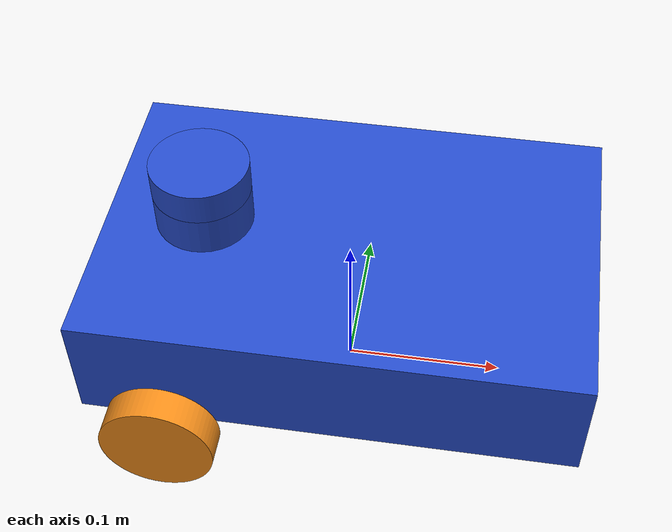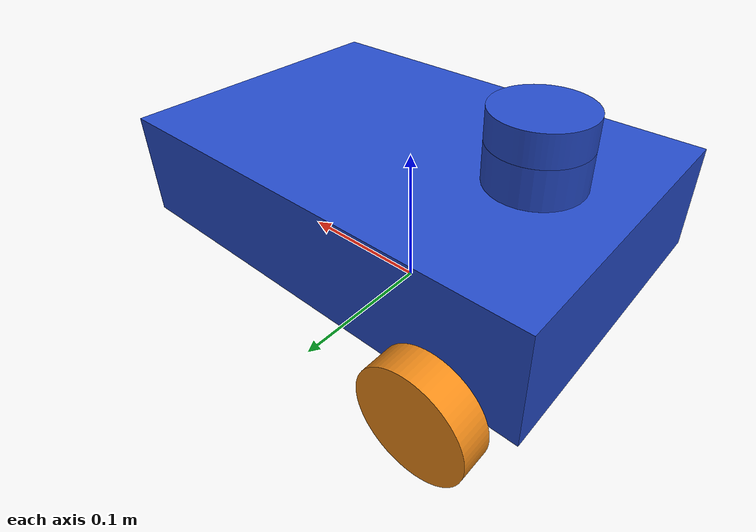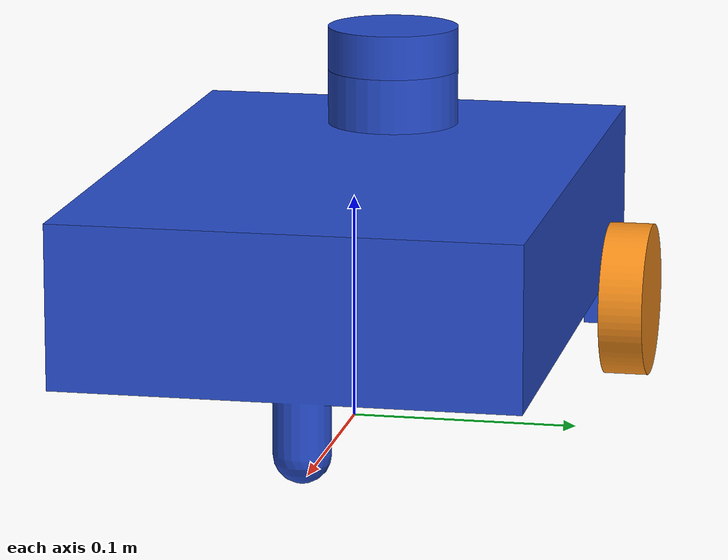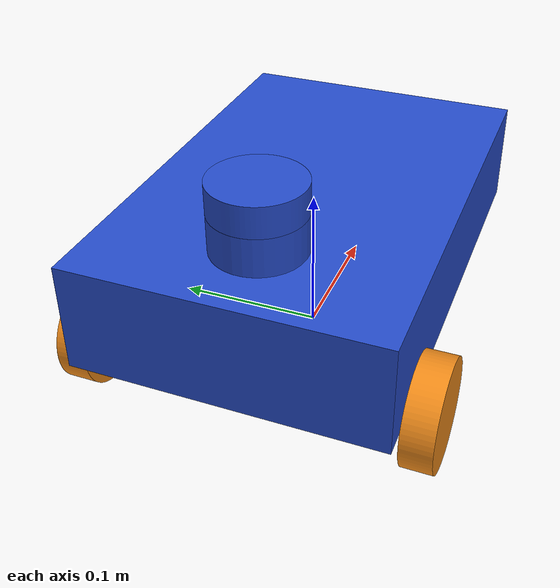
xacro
<?xml version="1.0" ?>
<robot name="diff_robot" xmlns:xacro="http://www.ros.org/wiki/xacro">

<!-- materials file -->
<xacro:include filename="$(find robot_description_description)/urdf/materials.xacro" />
<!-- gazebo materials file -->
<xacro:include filename="$(find robot_description_description)/gazebo/robot_description_gazebo_material.gazebo" />
<!-- transfer -->
<!-- plugin -->
<xacro:include filename="$(find robot_description_description)/gazebo/robot_description_gazebo_plugin.gazebo" />
<xacro:include filename="$(find robot_description_description)/gazebo/robot_description.gazebo" />

<!-- link -->
<link name="base_link">
  <inertial>
    <origin xyz="-0.0011345589802084692 1.669329030983392e-17 0.08093852385142532" rpy="0 0 0"/>
    <mass value="4.620128763046212"/>
    <inertia ixx="0.017305" iyy="0.036986" izz="0.049972" ixy="0.0" iyz="0.0" ixz="0.000414"/>
  </inertial>
  <visual>
    <origin xyz="0 0 0" rpy="0 0 0"/>
    <geometry>
      <mesh filename="package://robot_description_description/meshes/base_link.stl" scale="0.001 0.001 0.001"/>
    </geometry>
    <material name="blue"/>
  </visual>
  <collision>
    <origin xyz="0 0 0" rpy="0 0 0"/>
    <geometry>
      <mesh filename="package://robot_description_description/meshes/base_link.stl" scale="0.001 0.001 0.001"/>
    </geometry>
  </collision>
</link>

<link name="lidar_1">
  <inertial>
    <origin xyz="0.0 -5.026061718855928e-18 0.010000000000000009" rpy="0 0 0"/>
    <mass value="0.08058185156457819"/>
    <inertia ixx="2.1e-05" iyy="2.1e-05" izz="3.6e-05" ixy="-0.0" iyz="0.0" ixz="0.0"/>
  </inertial>
  <visual>
    <origin xyz="0.09 -0.0 -0.141" rpy="0 0 0"/>
    <geometry>
      <mesh filename="package://robot_description_description/meshes/lidar_1.stl" scale="0.001 0.001 0.001"/>
    </geometry>
    <material name="blue"/>
  </visual>
  <collision>
    <origin xyz="0.09 -0.0 -0.141" rpy="0 0 0"/>
    <geometry>
      <mesh filename="package://robot_description_description/meshes/lidar_1.stl" scale="0.001 0.001 0.001"/>
    </geometry>
  </collision>
</link>

<link name="left_wheel_1">
  <inertial>
    <origin xyz="1.8041124150158794e-16 0.012991205709915896 -6.938893903907228e-18" rpy="0 0 0"/>
    <mass value="0.07163597013394048"/>
    <inertia ixx="2.4e-05" iyy="4.4e-05" izz="2.4e-05" ixy="-0.0" iyz="0.0" ixz="-0.0"/>
  </inertial>
  <visual>
    <origin xyz="0.1 -0.097 -0.035" rpy="0 0 0"/>
    <geometry>
      <mesh filename="package://robot_description_description/meshes/left_wheel_1.stl" scale="0.001 0.001 0.001"/>
    </geometry>
    <material name="orange"/>
  </visual>
  <collision>
    <origin xyz="0.1 -0.097 -0.035" rpy="0 0 0"/>
    <geometry>
      <mesh filename="package://robot_description_description/meshes/left_wheel_1.stl" scale="0.001 0.001 0.001"/>
    </geometry>
  </collision>
</link>

<link name="right_wheel_1">
  <inertial>
    <origin xyz="1.3322676295501878e-15 -0.012991205709915882 0.0" rpy="0 0 0"/>
    <mass value="0.0716359701339404"/>
    <inertia ixx="2.4e-05" iyy="4.4e-05" izz="2.4e-05" ixy="0.0" iyz="-0.0" ixz="-0.0"/>
  </inertial>
  <visual>
    <origin xyz="0.1 0.097 -0.035" rpy="0 0 0"/>
    <geometry>
      <mesh filename="package://robot_description_description/meshes/right_wheel_1.stl" scale="0.001 0.001 0.001"/>
    </geometry>
    <material name="orange"/>
  </visual>
  <collision>
    <origin xyz="0.1 0.097 -0.035" rpy="0 0 0"/>
    <geometry>
      <mesh filename="package://robot_description_description/meshes/right_wheel_1.stl" scale="0.001 0.001 0.001"/>
    </geometry>
  </collision>
</link>

<!-- joint -->
<joint name="to_lidar" type="fixed">
  <origin xyz="-0.09 0.0 0.141" rpy="0 0 0"/>
  <parent link="base_link"/>
  <child link="lidar_1"/>
</joint>

<joint name="to_left_wheel" type="continuous">

  <origin xyz="-0.1 0.097 0.035" rpy="0 0 0"/>
  <parent link="base_link"/>
  <child link="left_wheel_1"/>
  <axis xyz="0.0 1.0 0.0"/>
</joint>

<joint name="to_right_wheel" type="continuous">
  <origin xyz="-0.1 -0.097 0.035" rpy="0 0 0"/>
  <parent link="base_link"/>
  <child link="right_wheel_1"/>
  <axis xyz="0.0 1.0 0.0"/>
</joint>

</robot>

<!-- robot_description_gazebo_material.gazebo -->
<robot name="diff_robot" xmlns:xacro="http://www.ros.org/wiki/xacro" >

<xacro:property name="body_color" value="Gazebo/Blue" />
<xacro:property name="lidar_color" value="Gazebo/White" />
<xacro:property name="wheel_color" value="Gazebo/Orange" />

<gazebo reference="base_link">
  <material>${body_color}</material>
</gazebo>

<gazebo reference="left_wheel_1">
  <material>${wheel_color}</material>
</gazebo>

<gazebo reference="right_wheel_1">
  <material>${wheel_color}</material>
</gazebo>

<gazebo reference="lidar_1">
  <material>${lidar_color}</material>
</gazebo>
</robot>
